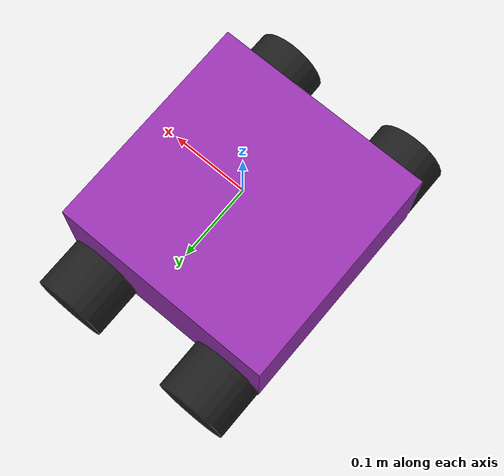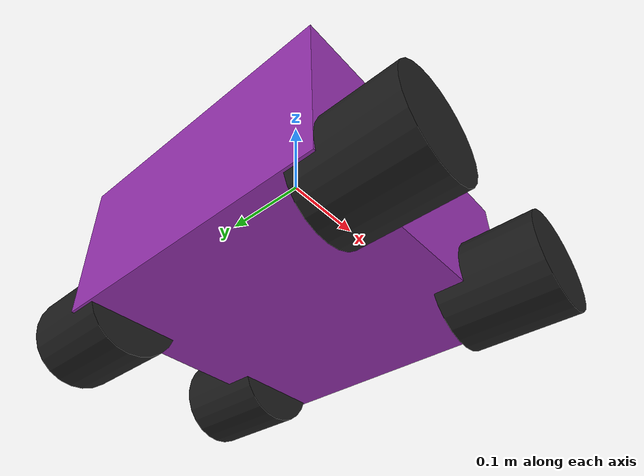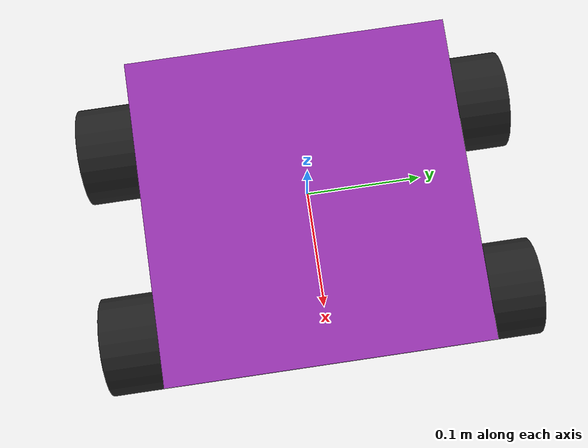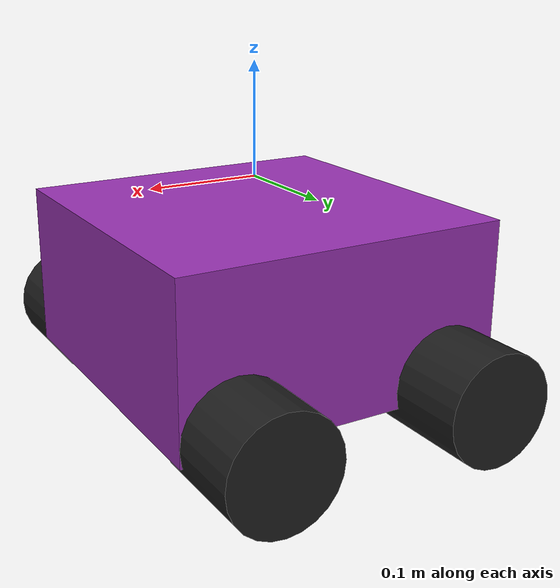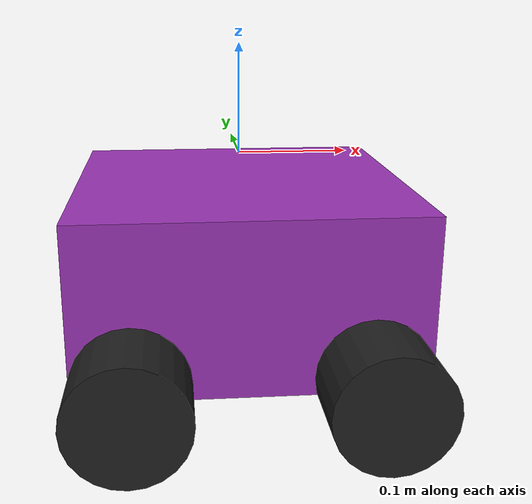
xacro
<?xml version="1.0"?>
<robot name="caffeine" xmlns:xacro="http://www.ros.org/wiki/xacro">
	<xacro:include filename="$(find caffeine_description)/urdf/base.xacro"/>
	<xacro:include filename="$(find caffeine_description)/urdf/inertias.xacro"/>
	<xacro:include filename="$(find caffeine_description)/urdf/wheels.xacro"/>
	<xacro:include filename="$(find caffeine_description)/urdf/caffeine.gazebo.xacro"/>

	<link name="world">
	</link>

	<!-- Base link -->
	<link name="base_link">
		<xacro:base_link_description/>
	</link>
	<joint name="world_joint" type="fixed">
		<parent link="world"/>
		<child link="base_link"/>
		<origin xyz="0 0 -0.1"/>
	</joint>

	<!-- Right front wheel -->
	<link name="right_front_wheel">
		<xacro:wheel_link_description />
	</link>
	<joint name="right_front_wheel_joint" type="continuous">
		<parent link="base_link"/>
		<child link="right_front_wheel"/>
		<origin xyz="${length/3.0} ${-width/2.0 - wheel_base_offset} ${-height/2.5}" rpy="0 0 0"/>
		<axis xyz="0 1 0"/>
		<dynamics damping="${wheel_df}"/>
	</joint>
	<xacro:Transmission joint="right_front_wheel_joint"/>

	<!-- Right back wheel -->
	<link name="right_back_wheel">
		<xacro:wheel_link_description />
	</link>
	<joint name="right_back_wheel_joint" type="continuous">
		<parent link="base_link"/>
		<child link="right_back_wheel"/>
		<origin xyz="${-length/3.0} ${-width/2.0 - wheel_base_offset} ${-height/2.5}" rpy="0 0 0"/>
		<axis xyz="0 1 0"/>
		<dynamics damping="${wheel_df}"/>
	</joint>
	<xacro:Transmission joint="right_back_wheel_joint"/>

	<!-- Left front wheel -->
	<link name="left_front_wheel">
		<xacro:wheel_link_description/>
	</link>
	<joint name="left_front_wheel_joint" type="continuous">
		<parent link="base_link"/>
		<child link="left_front_wheel"/>
		<origin xyz="${length/3.0} ${width/2.0 + wheel_base_offset} ${-height/2.5}" rpy="0 0 0"/>
		<axis xyz="0 1 0"/>
		<dynamics damping="${wheel_df}"/>
	</joint>
	<xacro:Transmission joint="left_front_wheel_joint"/>

	<!-- Left back wheel -->
	<link name="left_back_wheel">
		<xacro:wheel_link_description/>
	</link>
	<joint name="left_back_wheel_joint" type="continuous">
		<parent link="base_link"/>
		<child link="left_back_wheel"/>
		<origin xyz="${-length/3.0} ${width/2.0 + wheel_base_offset} ${-height/2.5}" rpy="0 0 0"/>
		<axis xyz="0 1 0"/>
		<dynamics damping="${wheel_df}"/>
	</joint>
	<xacro:Transmission joint="left_back_wheel_joint"/>

</robot>

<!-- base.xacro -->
<robot name="base" xmlns:xacro="http://www.ros.org/wiki/xacro">
    <!--properties are constants-->
    <!--macros are grouping a bunch of properties together (for joints and links)-->

	<xacro:include filename="$(find caffeine_description)/urdf/inertias.xacro"/>

    <!-- Constants for drivebase -->
	<xacro:property name="length" value="0.3"/>
	<xacro:property name="width" value="0.3"/>
	<xacro:property name="height" value="0.15"/>
	<xacro:property name="mass" value="3.0"/>

    <!-- Define link and coordinate frame -->
    <xacro:macro name="base_link_description">
        <!--creates a shape with property specifications-->
        <visual>
            <origin rpy="0 0 0" xyz="0 0 0"/>
            <geometry>
                <box size="${length} ${width} ${height}"/>
            </geometry>
            <material name="purple"/>
        </visual>

        	<!--defines rigid boundaries-->
        	<collision>
			<origin rpy="0 0 0" xyz="0 0 0"/>
			<geometry>
				<box size="${length} ${width} ${height}"/>
			</geometry>
		</collision>

		<inertial>
			<mass value="${mass}"/>
			<xacro:box_inertia mass="${mass}" length="${length}" width="${width}" height="${height}"/>
		</inertial>
   </xacro:macro>
</robot>

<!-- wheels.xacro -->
<robot name="wheels" xmlns:xacro="http://www.ros.org/wiki/xacro">

	<xacro:include filename="$(find caffeine_description)/urdf/inertias.xacro"/>
	<!-- Mathematical constants -->
	<xacro:property name = "pi" value = "3.1415926535"/>

	<!-- Wheel constants -->
	<xacro:property name = "wheel_diam" value = "0.1"/>
	<xacro:property name = "wheel_length" value = "0.1"/>
	<xacro:property name = "wheel_mass" value = "2.0"/>
	<xacro:property name = "wheel_base_offset" value="0.02"/>
	<xacro:property name = "wheel_df" value = "0.0"/>

	<xacro:macro name="wheel_link_description">
		<visual>
			<origin rpy="${pi/2} 0 0" xyz="0 0 0"/>
			<geometry>
				<cylinder length="${wheel_length}" radius="${wheel_diam/2.0}"/>
			</geometry>
			<material name="black"/>
		</visual>
		<collision>
			<origin rpy="${pi/2} 0 0" xyz="0 0 0"/>
			<geometry>
				<cylinder length="${wheel_length}" radius="${wheel_diam/2.0}"/>
			</geometry>
		</collision>
		<inertial>
			<mass value="${wheel_mass}"/>
			<xacro:cylinder_inertia mass="${wheel_mass}" length="${wheel_length}" radius="${wheel_diam/2.0}"/>
		</inertial>
	</xacro:macro>

	<!-- this is used wherever necessary for all joints -->
	<xacro:macro name="Transmission" params="joint">
		<transmission name="trans_${joint}">
			<type>transmission_interface/SimpleTransmission</type>
			<joint name="${joint}">
				<hardwareInterface>hardware_interface/PositionJointInterface</hardwareInterface>
			</joint>
			<actuator name="${joint}_motor">
				<hardwareInterface>hardware_interface/PositionJointInterface</hardwareInterface>
				<mechanicalReduction>1</mechanicalReduction>
			</actuator>
		</transmission>
	</xacro:macro>

</robot>
